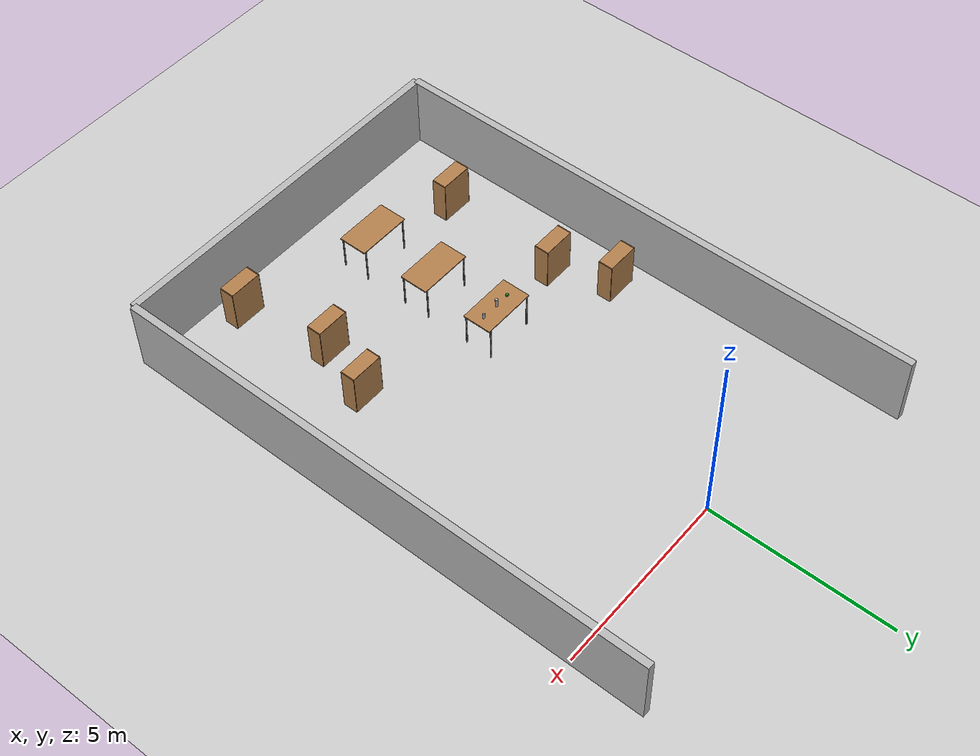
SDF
<sdf version="1.6">
 <world name="default">
  <model name="ground_plane">
   <static>1</static>
   <link name="link">
    <collision name="collision">
     <geometry><plane><normal>0 0 1</normal><size>100 100</size></plane></geometry>
     <surface><friction><ode><mu>100</mu><mu2>50</mu2></ode></friction></surface>
    </collision>
    <visual name="visual">
     <cast_shadows>0</cast_shadows>
     <geometry><plane><normal>0 0 1</normal><size>100 100</size></plane></geometry>
     <material>
      <script><uri>file://media/materials/scripts/gazebo.material</uri><name>Gazebo/Grey</name></script>
     </material>
    </visual>
    <velocity_decay><linear>0</linear><angular>0</angular></velocity_decay>
   </link>
  </model>
  <model name="wall_1_model">
   <pose>0 -13 1 0 -0 0</pose>
   <static>1</static>
   <link name="wall_1_body">
    <inertial>
     <mass>1</mass>
     <inertia><ixx>1</ixx><ixy>0</ixy><ixz>0</ixz><iyy>1</iyy><iyz>0</iyz><izz>1</izz></inertia>
    </inertial>
    <collision name="collision"><geometry><box><size>10 0.2 2</size></box></geometry></collision>
    <visual name="visual"><geometry><box><size>10 0.2 2</size></box></geometry></visual>
    <velocity_decay><linear>0</linear><angular>0</angular></velocity_decay>
   </link>
  </model>
  <model name="wall_3_model">
   <pose>-5 -5.5 1 0 -0 0</pose>
   <static>1</static>
   <link name="wall_3_body">
    <inertial>
     <mass>1</mass>
     <inertia><ixx>1</ixx><ixy>0</ixy><ixz>0</ixz><iyy>1</iyy><iyz>0</iyz><izz>1</izz></inertia>
    </inertial>
    <collision name="collision"><geometry><box><size>0.2 15 2</size></box></geometry></collision>
    <visual name="visual"><geometry><box><size>0.2 15 2</size></box></geometry></visual>
    <velocity_decay><linear>0</linear><angular>0</angular></velocity_decay>
   </link>
  </model>
  <model name="wall_4_model">
   <pose>5 -5.5 1 0 -0 0</pose>
   <static>1</static>
   <link name="wall_4_body">
    <inertial>
     <mass>1</mass>
     <inertia><ixx>1</ixx><ixy>0</ixy><ixz>0</ixz><iyy>1</iyy><iyz>0</iyz><izz>1</izz></inertia>
    </inertial>
    <collision name="collision"><geometry><box><size>0.2 15 2</size></box></geometry></collision>
    <visual name="visual"><geometry><box><size>0.2 15 2</size></box></geometry></visual>
    <velocity_decay><linear>0</linear><angular>0</angular></velocity_decay>
   </link>
  </model>
  <model name="bookshelf">
   <static>1</static>
   <link name="link">
    <inertial><mass>1</mass></inertial>
    <collision name="back">
     <pose>0 0.005 0.6 0 -0 0</pose>
     <geometry><box><size>0.9 0.01 1.2</size></box></geometry>
    </collision>
    <visual name="visual1">
     <pose>0 0.005 0.6 0 -0 0</pose>
     <geometry><box><size>0.9 0.01 1.2</size></box></geometry>
     <material>
      <script><uri>file://media/materials/scripts/gazebo.material</uri><name>Gazebo/Wood</name></script>
     </material>
    </visual>
    <collision name="left_side">
     <pose>0.45 -0.195 0.6 0 -0 0</pose>
     <geometry><box><size>0.02 0.4 1.2</size></box></geometry>
    </collision>
    <visual name="visual2">
     <pose>0.45 -0.195 0.6 0 -0 0</pose>
     <geometry><box><size>0.02 0.4 1.2</size></box></geometry>
     <material>
      <script><uri>file://media/materials/scripts/gazebo.material</uri><name>Gazebo/Wood</name></script>
     </material>
    </visual>
    <collision name="right_side">
     <pose>-0.45 -0.195 0.6 0 -0 0</pose>
     <geometry><box><size>0.02 0.4 1.2</size></box></geometry>
    </collision>
    <visual name="visual3">
     <pose>-0.45 -0.195 0.6 0 -0 0</pose>
     <geometry><box><size>0.02 0.4 1.2</size></box></geometry>
     <material>
      <script><uri>file://media/materials/scripts/gazebo.material</uri><name>Gazebo/Wood</name></script>
     </material>
    </visual>
    <collision name="bottom">
     <pose>0 -0.195 0.03 0 -0 0</pose>
     <geometry><box><size>0.88 0.4 0.06</size></box></geometry>
    </collision>
    <visual name="visual4">
     <pose>0 -0.195 0.03 0 -0 0</pose>
     <geometry><box><size>0.88 0.4 0.06</size></box></geometry>
     <material>
      <script><uri>file://media/materials/scripts/gazebo.material</uri><name>Gazebo/Wood</name></script>
     </material>
    </visual>
    <collision name="top">
     <pose>0 -0.195 1.19 0 -0 0</pose>
     <geometry><box><size>0.88 0.4 0.02</size></box></geometry>
    </collision>
    <visual name="visual5">
     <pose>0 -0.195 1.19 0 -0 0</pose>
     <geometry><box><size>0.88 0.4 0.02</size></box></geometry>
     <material>
      <script><uri>file://media/materials/scripts/gazebo.material</uri><name>Gazebo/Wood</name></script>
     </material>
    </visual>
    <collision name="low_shelf">
     <pose>0 -0.195 0.43 0 -0 0</pose>
     <geometry><box><size>0.88 0.4 0.02</size></box></geometry>
    </collision>
    <visual name="visual6">
     <pose>0 -0.195 0.43 0 -0 0</pose>
     <geometry><box><size>0.88 0.4 0.02</size></box></geometry>
     <material>
      <script><uri>file://media/materials/scripts/gazebo.material</uri><name>Gazebo/Wood</name></script>
     </material>
    </visual>
    <collision name="high_shelf">
     <pose>0 -0.195 0.8 0 -0 0</pose>
     <geometry><box><size>0.88 0.4 0.02</size></box></geometry>
    </collision>
    <visual name="visual7">
     <pose>0 -0.195 0.8 0 -0 0</pose>
     <geometry><box><size>0.88 0.4 0.02</size></box></geometry>
     <material>
      <script><uri>file://media/materials/scripts/gazebo.material</uri><name>Gazebo/Wood</name></script>
     </material>
    </visual>
    <velocity_decay><linear>0</linear><angular>0</angular></velocity_decay>
   </link>
   <pose>2 -9.55401 0 0 -0 0</pose>
  </model>
  <model name="table">
   <static>1</static>
   <link name="link">
    <collision name="surface">
     <pose>0 0 1 0 -0 0</pose>
     <geometry><box><size>1.5 0.8 0.03</size></box></geometry>
    </collision>
    <visual name="visual1">
     <pose>0 0 1 0 -0 0</pose>
     <geometry><box><size>1.5 0.8 0.03</size></box></geometry>
     <material>
      <script><uri>file://media/materials/scripts/gazebo.material</uri><name>Gazebo/Wood</name></script>
     </material>
    </visual>
    <collision name="front_left_leg">
     <pose>0.68 0.38 0.5 0 -0 0</pose>
     <geometry><cylinder><radius>0.02</radius><length>1</length></cylinder></geometry>
    </collision>
    <visual name="front_left_leg">
     <pose>0.68 0.38 0.5 0 -0 0</pose>
     <geometry><cylinder><radius>0.02</radius><length>1</length></cylinder></geometry>
     <material>
      <script><uri>file://media/materials/scripts/gazebo.material</uri><name>Gazebo/Grey</name></script>
     </material>
    </visual>
    <collision name="front_right_leg">
     <pose>0.68 -0.38 0.5 0 -0 0</pose>
     <geometry><cylinder><radius>0.02</radius><length>1</length></cylinder></geometry>
    </collision>
    <visual name="front_right_leg">
     <pose>0.68 -0.38 0.5 0 -0 0</pose>
     <geometry><cylinder><radius>0.02</radius><length>1</length></cylinder></geometry>
     <material>
      <script><uri>file://media/materials/scripts/gazebo.material</uri><name>Gazebo/Grey</name></script>
     </material>
    </visual>
    <collision name="back_right_leg">
     <pose>-0.68 -0.38 0.5 0 -0 0</pose>
     <geometry><cylinder><radius>0.02</radius><length>1</length></cylinder></geometry>
    </collision>
    <visual name="back_right_leg">
     <pose>-0.68 -0.38 0.5 0 -0 0</pose>
     <geometry><cylinder><radius>0.02</radius><length>1</length></cylinder></geometry>
     <material>
      <script><uri>file://media/materials/scripts/gazebo.material</uri><name>Gazebo/Grey</name></script>
     </material>
    </visual>
    <collision name="back_left_leg">
     <pose>-0.68 0.38 0.5 0 -0 0</pose>
     <geometry><cylinder><radius>0.02</radius><length>1</length></cylinder></geometry>
    </collision>
    <visual name="back_left_leg">
     <pose>-0.68 0.38 0.5 0 -0 0</pose>
     <geometry><cylinder><radius>0.02</radius><length>1</length></cylinder></geometry>
     <material>
      <script><uri>file://media/materials/scripts/gazebo.material</uri><name>Gazebo/Grey</name></script>
     </material>
    </visual>
    <velocity_decay><linear>0</linear><angular>0</angular></velocity_decay>
   </link>
   <pose>-1 -9 0 0 -0 0</pose>
  </model>
  <model name="bookshelf_2">
   <static>1</static>
   <link name="link">
    <inertial><mass>1</mass></inertial>
    <collision name="back">
     <pose>0 0.005 0.6 0 -0 0</pose>
     <geometry><box><size>0.9 0.01 1.2</size></box></geometry>
    </collision>
    <visual name="visual1">
     <pose>0 0.005 0.6 0 -0 0</pose>
     <geometry><box><size>0.9 0.01 1.2</size></box></geometry>
     <material>
      <script><uri>file://media/materials/scripts/gazebo.material</uri><name>Gazebo/Wood</name></script>
     </material>
    </visual>
    <collision name="left_side">
     <pose>0.45 -0.195 0.6 0 -0 0</pose>
     <geometry><box><size>0.02 0.4 1.2</size></box></geometry>
    </collision>
    <visual name="visual2">
     <pose>0.45 -0.195 0.6 0 -0 0</pose>
     <geometry><box><size>0.02 0.4 1.2</size></box></geometry>
     <material>
      <script><uri>file://media/materials/scripts/gazebo.material</uri><name>Gazebo/Wood</name></script>
     </material>
    </visual>
    <collision name="right_side">
     <pose>-0.45 -0.195 0.6 0 -0 0</pose>
     <geometry><box><size>0.02 0.4 1.2</size></box></geometry>
    </collision>
    <visual name="visual3">
     <pose>-0.45 -0.195 0.6 0 -0 0</pose>
     <geometry><box><size>0.02 0.4 1.2</size></box></geometry>
     <material>
      <script><uri>file://media/materials/scripts/gazebo.material</uri><name>Gazebo/Wood</name></script>
     </material>
    </visual>
    <collision name="bottom">
     <pose>0 -0.195 0.03 0 -0 0</pose>
     <geometry><box><size>0.88 0.4 0.06</size></box></geometry>
    </collision>
    <visual name="visual4">
     <pose>0 -0.195 0.03 0 -0 0</pose>
     <geometry><box><size>0.88 0.4 0.06</size></box></geometry>
     <material>
      <script><uri>file://media/materials/scripts/gazebo.material</uri><name>Gazebo/Wood</name></script>
     </material>
    </visual>
    <collision name="top">
     <pose>0 -0.195 1.19 0 -0 0</pose>
     <geometry><box><size>0.88 0.4 0.02</size></box></geometry>
    </collision>
    <visual name="visual5">
     <pose>0 -0.195 1.19 0 -0 0</pose>
     <geometry><box><size>0.88 0.4 0.02</size></box></geometry>
     <material>
      <script><uri>file://media/materials/scripts/gazebo.material</uri><name>Gazebo/Wood</name></script>
     </material>
    </visual>
    <collision name="low_shelf">
     <pose>0 -0.195 0.43 0 -0 0</pose>
     <geometry><box><size>0.88 0.4 0.02</size></box></geometry>
    </collision>
    <visual name="visual6">
     <pose>0 -0.195 0.43 0 -0 0</pose>
     <geometry><box><size>0.88 0.4 0.02</size></box></geometry>
     <material>
      <script><uri>file://media/materials/scripts/gazebo.material</uri><name>Gazebo/Wood</name></script>
     </material>
    </visual>
    <collision name="high_shelf">
     <pose>0 -0.195 0.8 0 -0 0</pose>
     <geometry><box><size>0.88 0.4 0.02</size></box></geometry>
    </collision>
    <visual name="visual7">
     <pose>0 -0.195 0.8 0 -0 0</pose>
     <geometry><box><size>0.88 0.4 0.02</size></box></geometry>
     <material>
      <script><uri>file://media/materials/scripts/gazebo.material</uri><name>Gazebo/Wood</name></script>
     </material>
    </visual>
    <velocity_decay><linear>0</linear><angular>0</angular></velocity_decay>
   </link>
   <pose>-3.41849 -7 0 0 -0 0</pose>
  </model>
  <model name="green_cube">
   <static>0</static>
   <link name="link">
    <inertial>
     <mass>0.25</mass>
     <inertia>
      <ixx>4.1667e-05</ixx>
      <ixy>0</ixy>
      <ixz>0</ixz>
      <iyy>4.1667e-05</iyy>
      <iyz>0</iyz>
      <izz>4.1667e-05</izz>
     </inertia>
    </inertial>
    <visual name="visual">
     <geometry><box><size>0.06 0.06 0.06</size></box></geometry>
     <material>
      <script><uri>file://media/materials/scripts/gazebo.material</uri><name>Gazebo/Green</name></script>
     </material>
    </visual>
    <collision name="collision">
     <geometry><box><size>0.06 0.06 0.06</size></box></geometry>
     <surface>
      <friction><ode><mu>30</mu><mu2>30</mu2></ode></friction>
      <contact><ode><kp>1e+06</kp><kd>100</kd><max_vel>1</max_vel><min_depth>0.0025</min_depth></ode></contact>
     </surface>
    </collision>
    <velocity_decay><linear>0</linear><angular>0</angular></velocity_decay>
   </link>
   <pose>-1.4038 -7 1.0425 0 -7e-06 -0.003312</pose>
  </model>
  <model name="biscuits_pack">
   <static>0</static>
   <link name="link">
    <inertial>
     <mass>0.25</mass>
     <inertia><ixx>0</ixx><ixy>0</ixy><ixz>0</ixz><iyy>0</iyy><iyz>0</iyz><izz>0</izz></inertia>
    </inertial>
    <collision name="collision">
     <geometry><cylinder><radius>0.029</radius><length>0.15</length></cylinder></geometry>
    </collision>
    <visual name="visual">
     <geometry><cylinder><radius>0.029</radius><length>0.15</length></cylinder></geometry>
     <material>
      <script>
       <uri>model://biscuits_pack/material/scripts</uri>
       <uri>model://biscuits_pack/material/textures</uri>
       <name>Custom/biscuits_pack</name>
      </script>
     </material>
    </visual>
    <velocity_decay><linear>0</linear><angular>0</angular></velocity_decay>
   </link>
   <pose>-0.509161 -6.98564 1.09 -0.000307 1.9e-05 -0.000243</pose>
  </model>
  <model name="pringles">
   <static>0</static>
   <link name="link">
    <inertial>
     <mass>0.25</mass>
     <inertia><ixx>0</ixx><ixy>0</ixy><ixz>0</ixz><iyy>0</iyy><iyz>0</iyz><izz>0</izz></inertia>
    </inertial>
    <collision name="collision">
     <geometry><cylinder><radius>0.04</radius><length>0.235</length></cylinder></geometry>
    </collision>
    <visual name="visual">
     <geometry><cylinder><radius>0.04</radius><length>0.235</length></cylinder></geometry>
     <material>
      <script>
       <uri>model://pringles/material/scripts</uri>
       <uri>model://pringles/material/textures</uri>
       <name>Custom/pringles</name>
      </script>
     </material>
    </visual>
    <velocity_decay><linear>0</linear><angular>0</angular></velocity_decay>
   </link>
   <pose>-0.994463 -6.99134 1.1325 -0.000198 5.1e-05 -0.024403</pose>
  </model>
  <model name="table_0">
   <static>1</static>
   <link name="link">
    <collision name="surface">
     <pose>0 0 1 0 -0 0</pose>
     <geometry><box><size>1.5 0.8 0.03</size></box></geometry>
    </collision>
    <visual name="visual1">
     <pose>0 0 1 0 -0 0</pose>
     <geometry><box><size>1.5 0.8 0.03</size></box></geometry>
     <material>
      <script><uri>file://media/materials/scripts/gazebo.material</uri><name>Gazebo/Wood</name></script>
     </material>
    </visual>
    <collision name="front_left_leg">
     <pose>0.68 0.38 0.5 0 -0 0</pose>
     <geometry><cylinder><radius>0.02</radius><length>1</length></cylinder></geometry>
    </collision>
    <visual name="front_left_leg">
     <pose>0.68 0.38 0.5 0 -0 0</pose>
     <geometry><cylinder><radius>0.02</radius><length>1</length></cylinder></geometry>
     <material>
      <script><uri>file://media/materials/scripts/gazebo.material</uri><name>Gazebo/Grey</name></script>
     </material>
    </visual>
    <collision name="front_right_leg">
     <pose>0.68 -0.38 0.5 0 -0 0</pose>
     <geometry><cylinder><radius>0.02</radius><length>1</length></cylinder></geometry>
    </collision>
    <visual name="front_right_leg">
     <pose>0.68 -0.38 0.5 0 -0 0</pose>
     <geometry><cylinder><radius>0.02</radius><length>1</length></cylinder></geometry>
     <material>
      <script><uri>file://media/materials/scripts/gazebo.material</uri><name>Gazebo/Grey</name></script>
     </material>
    </visual>
    <collision name="back_right_leg">
     <pose>-0.68 -0.38 0.5 0 -0 0</pose>
     <geometry><cylinder><radius>0.02</radius><length>1</length></cylinder></geometry>
    </collision>
    <visual name="back_right_leg">
     <pose>-0.68 -0.38 0.5 0 -0 0</pose>
     <geometry><cylinder><radius>0.02</radius><length>1</length></cylinder></geometry>
     <material>
      <script><uri>file://media/materials/scripts/gazebo.material</uri><name>Gazebo/Grey</name></script>
     </material>
    </visual>
    <collision name="back_left_leg">
     <pose>-0.68 0.38 0.5 0 -0 0</pose>
     <geometry><cylinder><radius>0.02</radius><length>1</length></cylinder></geometry>
    </collision>
    <visual name="back_left_leg">
     <pose>-0.68 0.38 0.5 0 -0 0</pose>
     <geometry><cylinder><radius>0.02</radius><length>1</length></cylinder></geometry>
     <material>
      <script><uri>file://media/materials/scripts/gazebo.material</uri><name>Gazebo/Grey</name></script>
     </material>
    </visual>
    <velocity_decay><linear>0</linear><angular>0</angular></velocity_decay>
   </link>
   <pose>-1 -7 0 0 -0 0</pose>
  </model>
  <model name="table_1">
   <static>1</static>
   <link name="link">
    <collision name="surface">
     <pose>0 0 1 0 -0 0</pose>
     <geometry><box><size>1.5 0.8 0.03</size></box></geometry>
    </collision>
    <visual name="visual1">
     <pose>0 0 1 0 -0 0</pose>
     <geometry><box><size>1.5 0.8 0.03</size></box></geometry>
     <material>
      <script><uri>file://media/materials/scripts/gazebo.material</uri><name>Gazebo/Wood</name></script>
     </material>
    </visual>
    <collision name="front_left_leg">
     <pose>0.68 0.38 0.5 0 -0 0</pose>
     <geometry><cylinder><radius>0.02</radius><length>1</length></cylinder></geometry>
    </collision>
    <visual name="front_left_leg">
     <pose>0.68 0.38 0.5 0 -0 0</pose>
     <geometry><cylinder><radius>0.02</radius><length>1</length></cylinder></geometry>
     <material>
      <script><uri>file://media/materials/scripts/gazebo.material</uri><name>Gazebo/Grey</name></script>
     </material>
    </visual>
    <collision name="front_right_leg">
     <pose>0.68 -0.38 0.5 0 -0 0</pose>
     <geometry><cylinder><radius>0.02</radius><length>1</length></cylinder></geometry>
    </collision>
    <visual name="front_right_leg">
     <pose>0.68 -0.38 0.5 0 -0 0</pose>
     <geometry><cylinder><radius>0.02</radius><length>1</length></cylinder></geometry>
     <material>
      <script><uri>file://media/materials/scripts/gazebo.material</uri><name>Gazebo/Grey</name></script>
     </material>
    </visual>
    <collision name="back_right_leg">
     <pose>-0.68 -0.38 0.5 0 -0 0</pose>
     <geometry><cylinder><radius>0.02</radius><length>1</length></cylinder></geometry>
    </collision>
    <visual name="back_right_leg">
     <pose>-0.68 -0.38 0.5 0 -0 0</pose>
     <geometry><cylinder><radius>0.02</radius><length>1</length></cylinder></geometry>
     <material>
      <script><uri>file://media/materials/scripts/gazebo.material</uri><name>Gazebo/Grey</name></script>
     </material>
    </visual>
    <collision name="back_left_leg">
     <pose>-0.68 0.38 0.5 0 -0 0</pose>
     <geometry><cylinder><radius>0.02</radius><length>1</length></cylinder></geometry>
    </collision>
    <visual name="back_left_leg">
     <pose>-0.68 0.38 0.5 0 -0 0</pose>
     <geometry><cylinder><radius>0.02</radius><length>1</length></cylinder></geometry>
     <material>
      <script><uri>file://media/materials/scripts/gazebo.material</uri><name>Gazebo/Grey</name></script>
     </material>
    </visual>
    <velocity_decay><linear>0</linear><angular>0</angular></velocity_decay>
   </link>
   <pose>-1 -11 0 0 -0 0</pose>
  </model>
  <model name="bookshelf_3">
   <static>1</static>
   <link name="link">
    <inertial><mass>1</mass></inertial>
    <collision name="back">
     <pose>0 0.005 0.6 0 -0 0</pose>
     <geometry><box><size>0.9 0.01 1.2</size></box></geometry>
    </collision>
    <visual name="visual1">
     <pose>0 0.005 0.6 0 -0 0</pose>
     <geometry><box><size>0.9 0.01 1.2</size></box></geometry>
     <material>
      <script><uri>file://media/materials/scripts/gazebo.material</uri><name>Gazebo/Wood</name></script>
     </material>
    </visual>
    <collision name="left_side">
     <pose>0.45 -0.195 0.6 0 -0 0</pose>
     <geometry><box><size>0.02 0.4 1.2</size></box></geometry>
    </collision>
    <visual name="visual2">
     <pose>0.45 -0.195 0.6 0 -0 0</pose>
     <geometry><box><size>0.02 0.4 1.2</size></box></geometry>
     <material>
      <script><uri>file://media/materials/scripts/gazebo.material</uri><name>Gazebo/Wood</name></script>
     </material>
    </visual>
    <collision name="right_side">
     <pose>-0.45 -0.195 0.6 0 -0 0</pose>
     <geometry><box><size>0.02 0.4 1.2</size></box></geometry>
    </collision>
    <visual name="visual3">
     <pose>-0.45 -0.195 0.6 0 -0 0</pose>
     <geometry><box><size>0.02 0.4 1.2</size></box></geometry>
     <material>
      <script><uri>file://media/materials/scripts/gazebo.material</uri><name>Gazebo/Wood</name></script>
     </material>
    </visual>
    <collision name="bottom">
     <pose>0 -0.195 0.03 0 -0 0</pose>
     <geometry><box><size>0.88 0.4 0.06</size></box></geometry>
    </collision>
    <visual name="visual4">
     <pose>0 -0.195 0.03 0 -0 0</pose>
     <geometry><box><size>0.88 0.4 0.06</size></box></geometry>
     <material>
      <script><uri>file://media/materials/scripts/gazebo.material</uri><name>Gazebo/Wood</name></script>
     </material>
    </visual>
    <collision name="top">
     <pose>0 -0.195 1.19 0 -0 0</pose>
     <geometry><box><size>0.88 0.4 0.02</size></box></geometry>
    </collision>
    <visual name="visual5">
     <pose>0 -0.195 1.19 0 -0 0</pose>
     <geometry><box><size>0.88 0.4 0.02</size></box></geometry>
     <material>
      <script><uri>file://media/materials/scripts/gazebo.material</uri><name>Gazebo/Wood</name></script>
     </material>
    </visual>
    <collision name="low_shelf">
     <pose>0 -0.195 0.43 0 -0 0</pose>
     <geometry><box><size>0.88 0.4 0.02</size></box></geometry>
    </collision>
    <visual name="visual6">
     <pose>0 -0.195 0.43 0 -0 0</pose>
     <geometry><box><size>0.88 0.4 0.02</size></box></geometry>
     <material>
      <script><uri>file://media/materials/scripts/gazebo.material</uri><name>Gazebo/Wood</name></script>
     </material>
    </visual>
    <collision name="high_shelf">
     <pose>0 -0.195 0.8 0 -0 0</pose>
     <geometry><box><size>0.88 0.4 0.02</size></box></geometry>
    </collision>
    <visual name="visual7">
     <pose>0 -0.195 0.8 0 -0 0</pose>
     <geometry><box><size>0.88 0.4 0.02</size></box></geometry>
     <material>
      <script><uri>file://media/materials/scripts/gazebo.material</uri><name>Gazebo/Wood</name></script>
     </material>
    </visual>
    <velocity_decay><linear>0</linear><angular>0</angular></velocity_decay>
   </link>
   <pose>2.45055 -12 0 0 -0 0</pose>
  </model>
  <model name="bookshelf_4">
   <static>1</static>
   <link name="link">
    <inertial><mass>1</mass></inertial>
    <collision name="back">
     <pose>0 0.005 0.6 0 -0 0</pose>
     <geometry><box><size>0.9 0.01 1.2</size></box></geometry>
    </collision>
    <visual name="visual1">
     <pose>0 0.005 0.6 0 -0 0</pose>
     <geometry><box><size>0.9 0.01 1.2</size></box></geometry>
     <material>
      <script><uri>file://media/materials/scripts/gazebo.material</uri><name>Gazebo/Wood</name></script>
     </material>
    </visual>
    <collision name="left_side">
     <pose>0.45 -0.195 0.6 0 -0 0</pose>
     <geometry><box><size>0.02 0.4 1.2</size></box></geometry>
    </collision>
    <visual name="visual2">
     <pose>0.45 -0.195 0.6 0 -0 0</pose>
     <geometry><box><size>0.02 0.4 1.2</size></box></geometry>
     <material>
      <script><uri>file://media/materials/scripts/gazebo.material</uri><name>Gazebo/Wood</name></script>
     </material>
    </visual>
    <collision name="right_side">
     <pose>-0.45 -0.195 0.6 0 -0 0</pose>
     <geometry><box><size>0.02 0.4 1.2</size></box></geometry>
    </collision>
    <visual name="visual3">
     <pose>-0.45 -0.195 0.6 0 -0 0</pose>
     <geometry><box><size>0.02 0.4 1.2</size></box></geometry>
     <material>
      <script><uri>file://media/materials/scripts/gazebo.material</uri><name>Gazebo/Wood</name></script>
     </material>
    </visual>
    <collision name="bottom">
     <pose>0 -0.195 0.03 0 -0 0</pose>
     <geometry><box><size>0.88 0.4 0.06</size></box></geometry>
    </collision>
    <visual name="visual4">
     <pose>0 -0.195 0.03 0 -0 0</pose>
     <geometry><box><size>0.88 0.4 0.06</size></box></geometry>
     <material>
      <script><uri>file://media/materials/scripts/gazebo.material</uri><name>Gazebo/Wood</name></script>
     </material>
    </visual>
    <collision name="top">
     <pose>0 -0.195 1.19 0 -0 0</pose>
     <geometry><box><size>0.88 0.4 0.02</size></box></geometry>
    </collision>
    <visual name="visual5">
     <pose>0 -0.195 1.19 0 -0 0</pose>
     <geometry><box><size>0.88 0.4 0.02</size></box></geometry>
     <material>
      <script><uri>file://media/materials/scripts/gazebo.material</uri><name>Gazebo/Wood</name></script>
     </material>
    </visual>
    <collision name="low_shelf">
     <pose>0 -0.195 0.43 0 -0 0</pose>
     <geometry><box><size>0.88 0.4 0.02</size></box></geometry>
    </collision>
    <visual name="visual6">
     <pose>0 -0.195 0.43 0 -0 0</pose>
     <geometry><box><size>0.88 0.4 0.02</size></box></geometry>
     <material>
      <script><uri>file://media/materials/scripts/gazebo.material</uri><name>Gazebo/Wood</name></script>
     </material>
    </visual>
    <collision name="high_shelf">
     <pose>0 -0.195 0.8 0 -0 0</pose>
     <geometry><box><size>0.88 0.4 0.02</size></box></geometry>
    </collision>
    <visual name="visual7">
     <pose>0 -0.195 0.8 0 -0 0</pose>
     <geometry><box><size>0.88 0.4 0.02</size></box></geometry>
     <material>
      <script><uri>file://media/materials/scripts/gazebo.material</uri><name>Gazebo/Wood</name></script>
     </material>
    </visual>
    <velocity_decay><linear>0</linear><angular>0</angular></velocity_decay>
   </link>
   <pose>2.51316 -8 0 0 -0 0</pose>
  </model>
  <model name="bookshelf_5">
   <static>1</static>
   <link name="link">
    <inertial><mass>1</mass></inertial>
    <collision name="back">
     <pose>0 0.005 0.6 0 -0 0</pose>
     <geometry><box><size>0.9 0.01 1.2</size></box></geometry>
    </collision>
    <visual name="visual1">
     <pose>0 0.005 0.6 0 -0 0</pose>
     <geometry><box><size>0.9 0.01 1.2</size></box></geometry>
     <material>
      <script><uri>file://media/materials/scripts/gazebo.material</uri><name>Gazebo/Wood</name></script>
     </material>
    </visual>
    <collision name="left_side">
     <pose>0.45 -0.195 0.6 0 -0 0</pose>
     <geometry><box><size>0.02 0.4 1.2</size></box></geometry>
    </collision>
    <visual name="visual2">
     <pose>0.45 -0.195 0.6 0 -0 0</pose>
     <geometry><box><size>0.02 0.4 1.2</size></box></geometry>
     <material>
      <script><uri>file://media/materials/scripts/gazebo.material</uri><name>Gazebo/Wood</name></script>
     </material>
    </visual>
    <collision name="right_side">
     <pose>-0.45 -0.195 0.6 0 -0 0</pose>
     <geometry><box><size>0.02 0.4 1.2</size></box></geometry>
    </collision>
    <visual name="visual3">
     <pose>-0.45 -0.195 0.6 0 -0 0</pose>
     <geometry><box><size>0.02 0.4 1.2</size></box></geometry>
     <material>
      <script><uri>file://media/materials/scripts/gazebo.material</uri><name>Gazebo/Wood</name></script>
     </material>
    </visual>
    <collision name="bottom">
     <pose>0 -0.195 0.03 0 -0 0</pose>
     <geometry><box><size>0.88 0.4 0.06</size></box></geometry>
    </collision>
    <visual name="visual4">
     <pose>0 -0.195 0.03 0 -0 0</pose>
     <geometry><box><size>0.88 0.4 0.06</size></box></geometry>
     <material>
      <script><uri>file://media/materials/scripts/gazebo.material</uri><name>Gazebo/Wood</name></script>
     </material>
    </visual>
    <collision name="top">
     <pose>0 -0.195 1.19 0 -0 0</pose>
     <geometry><box><size>0.88 0.4 0.02</size></box></geometry>
    </collision>
    <visual name="visual5">
     <pose>0 -0.195 1.19 0 -0 0</pose>
     <geometry><box><size>0.88 0.4 0.02</size></box></geometry>
     <material>
      <script><uri>file://media/materials/scripts/gazebo.material</uri><name>Gazebo/Wood</name></script>
     </material>
    </visual>
    <collision name="low_shelf">
     <pose>0 -0.195 0.43 0 -0 0</pose>
     <geometry><box><size>0.88 0.4 0.02</size></box></geometry>
    </collision>
    <visual name="visual6">
     <pose>0 -0.195 0.43 0 -0 0</pose>
     <geometry><box><size>0.88 0.4 0.02</size></box></geometry>
     <material>
      <script><uri>file://media/materials/scripts/gazebo.material</uri><name>Gazebo/Wood</name></script>
     </material>
    </visual>
    <collision name="high_shelf">
     <pose>0 -0.195 0.8 0 -0 0</pose>
     <geometry><box><size>0.88 0.4 0.02</size></box></geometry>
    </collision>
    <visual name="visual7">
     <pose>0 -0.195 0.8 0 -0 0</pose>
     <geometry><box><size>0.88 0.4 0.02</size></box></geometry>
     <material>
      <script><uri>file://media/materials/scripts/gazebo.material</uri><name>Gazebo/Wood</name></script>
     </material>
    </visual>
    <velocity_decay><linear>0</linear><angular>0</angular></velocity_decay>
   </link>
   <pose>-3.53929 -10.4222 0 0 -0 0</pose>
  </model>
  <model name="bookshelf_6">
   <static>1</static>
   <link name="link">
    <inertial><mass>1</mass></inertial>
    <collision name="back">
     <pose>0 0.005 0.6 0 -0 0</pose>
     <geometry><box><size>0.9 0.01 1.2</size></box></geometry>
    </collision>
    <visual name="visual1">
     <pose>0 0.005 0.6 0 -0 0</pose>
     <geometry><box><size>0.9 0.01 1.2</size></box></geometry>
     <material>
      <script><uri>file://media/materials/scripts/gazebo.material</uri><name>Gazebo/Wood</name></script>
     </material>
    </visual>
    <collision name="left_side">
     <pose>0.45 -0.195 0.6 0 -0 0</pose>
     <geometry><box><size>0.02 0.4 1.2</size></box></geometry>
    </collision>
    <visual name="visual2">
     <pose>0.45 -0.195 0.6 0 -0 0</pose>
     <geometry><box><size>0.02 0.4 1.2</size></box></geometry>
     <material>
      <script><uri>file://media/materials/scripts/gazebo.material</uri><name>Gazebo/Wood</name></script>
     </material>
    </visual>
    <collision name="right_side">
     <pose>-0.45 -0.195 0.6 0 -0 0</pose>
     <geometry><box><size>0.02 0.4 1.2</size></box></geometry>
    </collision>
    <visual name="visual3">
     <pose>-0.45 -0.195 0.6 0 -0 0</pose>
     <geometry><box><size>0.02 0.4 1.2</size></box></geometry>
     <material>
      <script><uri>file://media/materials/scripts/gazebo.material</uri><name>Gazebo/Wood</name></script>
     </material>
    </visual>
    <collision name="bottom">
     <pose>0 -0.195 0.03 0 -0 0</pose>
     <geometry><box><size>0.88 0.4 0.06</size></box></geometry>
    </collision>
    <visual name="visual4">
     <pose>0 -0.195 0.03 0 -0 0</pose>
     <geometry><box><size>0.88 0.4 0.06</size></box></geometry>
     <material>
      <script><uri>file://media/materials/scripts/gazebo.material</uri><name>Gazebo/Wood</name></script>
     </material>
    </visual>
    <collision name="top">
     <pose>0 -0.195 1.19 0 -0 0</pose>
     <geometry><box><size>0.88 0.4 0.02</size></box></geometry>
    </collision>
    <visual name="visual5">
     <pose>0 -0.195 1.19 0 -0 0</pose>
     <geometry><box><size>0.88 0.4 0.02</size></box></geometry>
     <material>
      <script><uri>file://media/materials/scripts/gazebo.material</uri><name>Gazebo/Wood</name></script>
     </material>
    </visual>
    <collision name="low_shelf">
     <pose>0 -0.195 0.43 0 -0 0</pose>
     <geometry><box><size>0.88 0.4 0.02</size></box></geometry>
    </collision>
    <visual name="visual6">
     <pose>0 -0.195 0.43 0 -0 0</pose>
     <geometry><box><size>0.88 0.4 0.02</size></box></geometry>
     <material>
      <script><uri>file://media/materials/scripts/gazebo.material</uri><name>Gazebo/Wood</name></script>
     </material>
    </visual>
    <collision name="high_shelf">
     <pose>0 -0.195 0.8 0 -0 0</pose>
     <geometry><box><size>0.88 0.4 0.02</size></box></geometry>
    </collision>
    <visual name="visual7">
     <pose>0 -0.195 0.8 0 -0 0</pose>
     <geometry><box><size>0.88 0.4 0.02</size></box></geometry>
     <material>
      <script><uri>file://media/materials/scripts/gazebo.material</uri><name>Gazebo/Wood</name></script>
     </material>
    </visual>
    <velocity_decay><linear>0</linear><angular>0</angular></velocity_decay>
   </link>
   <pose>-4 -5.47465 0 0 -0 0</pose>
  </model>
 </world>
</sdf>
